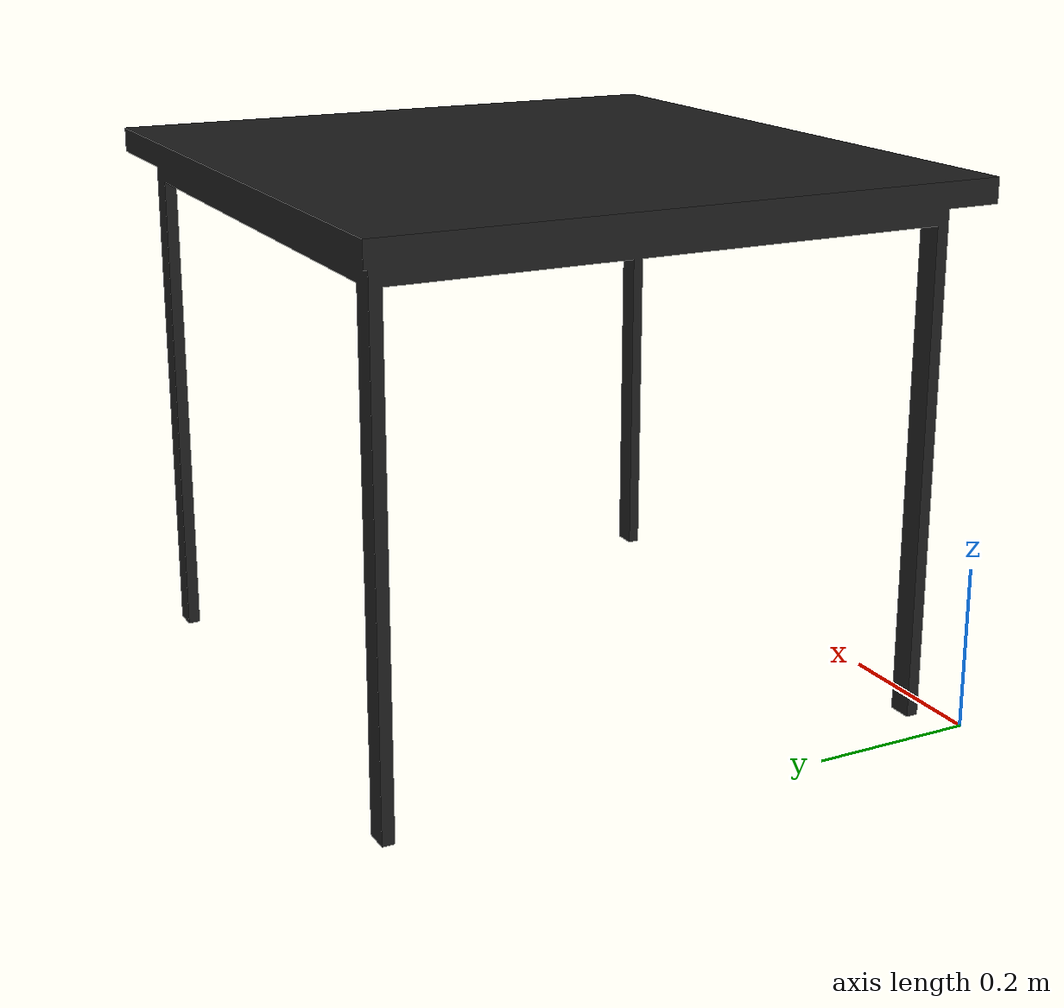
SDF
<?xml version='1.0'?>
<sdf version='1.7'>
  <model name='Untitled'>
    <model name='kitchen_table'>
      <static>1</static>
      <link name='link'>
        <collision name='colision1'>
          <pose>0 0 0 0 -0 0</pose>
          <geometry>
            <mesh>
              <uri>model://kitchen_table/meshes/kitchen_table.stl</uri>
              <scale>1 1 1</scale>
            </mesh>
          </geometry>
          <surface>
            <bounce/>
            <friction>
              <ode/>
            </friction>
            <contact>
              <ode/>
            </contact>
          </surface>
        </collision>
        <visual name='visual1'>
          <pose>0 0 0 0 -0 0</pose>
          <geometry>
            <mesh>
              <uri>model://kitchen_table/meshes/kitchen_table.stl</uri>
              <scale>1 1 1</scale>
            </mesh>
          </geometry>
          <material>
            <script>
              <uri>file://media/materials/scripts/gazebo.material</uri>
              <name>Gazebo/FlatBlack</name>
            </script>
          </material>
        </visual>
        <velocity_decay>
          <linear>0</linear>
          <angular>0</angular>
        </velocity_decay>
        <self_collide>0</self_collide>
        <kinematic>0</kinematic>
        <gravity>1</gravity>
      </link>
      <pose>0 -0 0 0 -0 0</pose>
    </model>
    <static>0</static>
    <allow_auto_disable>1</allow_auto_disable>
  </model>
</sdf>
